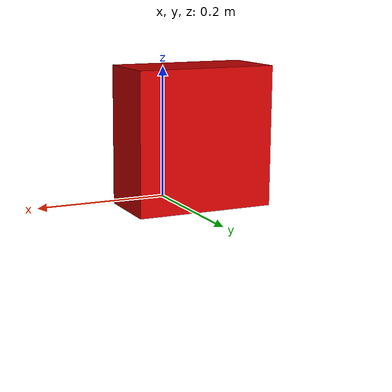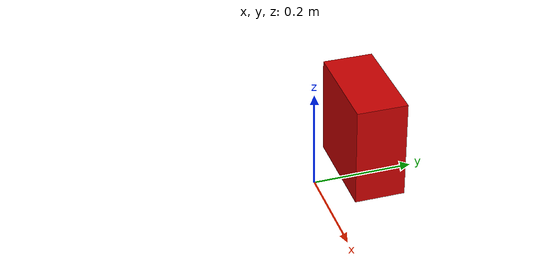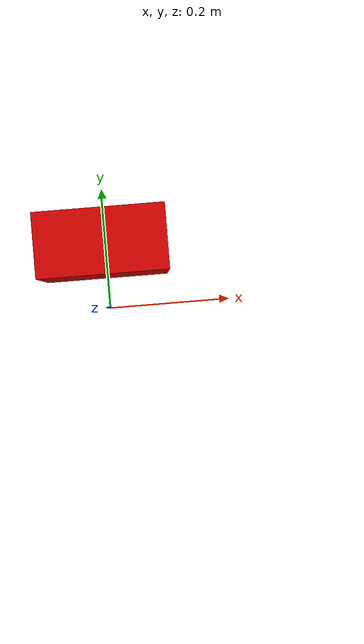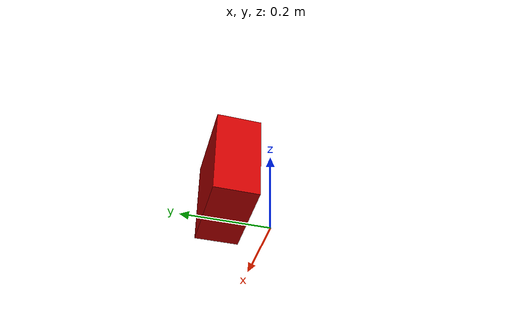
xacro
<?xml version="1.0"?>
<robot xmlns:xacro="http://www.ros.org/wiki/xacro" name="diff_drive_robot">

    <!--Include Files-->
    <xacro:include filename="$(find lab06_description)/urdf/ddr.parameters.xacro" />
    <xacro:include filename="$(find lab06_description)/urdf/ddr.materials.xacro" />
    <xacro:include filename="$(find lab06_description)/urdf/ddr.gazebo.xacro" />
    <xacro:include filename="$(find lab06_description)/urdf/ddr.macros.xacro" />

    <!--
        Build the robot!
    -->

    <!--Base Link-->
    <link name="base_link" />

    <!--Create the chassis and add it to the base link-->
    <xacro:gz_white_material name="${chassis_name}" />
    <link name="${chassis_name}">
        <visual>
            <xacro:chassis_geometry />
            <material name="white" />
        </visual>
        <collision>
            <xacro:chassis_geometry />
        </collision>
        <xacro:cylinder_inertial mass="${chassis_mass}"
                                 radius="${chassis_radius}"
                                 length="${chassis_height}"
                                 />
    </link>
    <joint name="robot_chassis_joint" type="fixed">
        <parent link="base_link"/>
        <child link="${chassis_name}"/>
        <origin xyz="0 0 ${wheel_radius * 1.33 + 0.01}"/>
    </joint>

    <!--Add Wheels-->
    <xacro:wheel name="right_wheel" rl_reflection="1" />
    <xacro:wheel name="left_wheel"  rl_reflection="-1" />

    <!--Add Gliders-->
    <xacro:glider name="front_glider" fb_reflection="1" />
    <xacro:glider name="back_glider" fb_reflection="-1" />

    <!--Add Camera-->
    <xacro:camera name="${camera_name}" />

</robot>

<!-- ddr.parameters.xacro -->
<robot xmlns:xacro="http://www.ros.org/wiki/xacro" name="diff_drive_robot">

    <!--
        Command line args
    -->
    <xacro:arg name="chassis_radius"    default="0" />
    <xacro:arg name="chassis_height"    default="0" />
    <xacro:arg name="wheel_radius"      default="0" />
    <xacro:arg name="glider_radius"     default="0" />

    <!--
        Properties
    -->
    <!--Robot vertical offset-->
    <xacro:property name="vertical_offset" value="${wheel_radius * 1.1}" />

    <!--Chassis properties-->
    <xacro:property name="chassis_name" value="ddr_chassis" />
    <xacro:property name="chassis_density" value="500.0" />
    <xacro:property name="chassis_radius" value="$(arg chassis_radius)" />
    <xacro:property name="chassis_height" value="$(arg chassis_height)" />
    <xacro:property name="chassis_mass" value="${chassis_density * pi * chassis_radius**2 * chassis_height}" />

    <!--Wheel properties-->
    <xacro:property name="wheel_density" value="800.0" />
    <xacro:property name="wheel_radius" value="$(arg wheel_radius)" />
    <xacro:property name="wheel_width" value="${$(arg wheel_radius) * .5}" />
    <xacro:property name="wheel_mass" value="${wheel_density * pi * wheel_radius**2 * wheel_width}" />

    <!--Glider properties-->
    <xacro:property name="glider_density" value="200.0" />
    <xacro:property name="glider_radius" value="$(arg glider_radius)" />
    <xacro:property name="glider_mass" value="${glider_density * (4.0 / 3.0) * pi * glider_radius**3}" />

    <!--Camera properties-->
    <xacro:property name="camera_name" value="rgba_camera" />
    <xacro:property name="camera_density" value="100.0" />
    <xacro:property name="camera_length" value="0.1" />
    <xacro:property name="camera_width" value="0.2" />
    <xacro:property name="camera_height" value="0.2" />
    <xacro:property name="camera_mass" value="${camera_density * camera_length * camera_width * camera_height}" />

    <!--Differential Drive properties-->

</robot>

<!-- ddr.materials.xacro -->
<robot xmlns:xacro="http://www.ros.org/wiki/xacro" name="diff_drive_robot">

  <material name="black">
        <color rgba="0 0 0 1"/>
    </material>

    <material name="blue">
        <color rgba="0.0 0.0 0.8 1.0" />
    </material>

    <material name="green">
        <color rgba="0.0 0.8 0.0 1.0" />
    </material>

    <material name="grey">
        <color rgba="0.2 0.2 0.2 1.0" />
    </material>

    <material name="orange">
        <color rgba="${255/255} ${108/255} ${10/255} 1.0" />
    </material>

    <material name="brown">
        <color rgba="${222/255} ${207/255} ${195/255} 1.0" />
    </material>

    <material name="red">
        <color rgba="0.8 0.0 0.0 1.0" />
    </material>

    <material name="white">
        <color rgba="1.0 1.0 1.0 1.0" />
    </material>

</robot>

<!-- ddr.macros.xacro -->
<robot xmlns:xacro="http://www.ros.org/wiki/xacro" name="diff_drive_robot">

    <!--
        Macro for creating cylinder inertial
    -->
    <xacro:macro name="cylinder_inertial" params="mass radius length">
        <inertial>
            <mass value="${mass}" />
            <inertia
                ixx="${(1.0 / 12.0) * (3.0 * radius**2 + length**2) * mass}"
                iyy="${(1.0 / 12.0) * (3.0 * radius**2 + length**2) * mass}"
                izz="${(1.0 / 12.0) * radius**2 * mass}"
                ixy="0"
                ixz="0"
                iyz="0"
                />
        </inertial>
    </xacro:macro>

    <!--
        Macro for creating sphere inertial
    -->
    <xacro:macro name="sphere_inertial" params="mass radius">
        <inertial>
            <mass value="${mass}" />
            <inertia
                ixx="${(2.0 / 5.0) * radius**2 * mass}"
                iyy="${(2.0 / 5.0) * radius**2 * mass}"
                izz="${(2.0 / 5.0) * radius**2 * mass}"
                ixy="0"
                ixz="0"
                iyz="0"
                />
        </inertial>
    </xacro:macro>

    <!--
        Macro for creating cube inertial
    -->
    <xacro:macro name="cube_inertial" params="mass x y z">
        <inertial>
            <mass value="${mass}" />
            <inertia
                ixx="${(1.0 / 12.0) * (y**2 + z**2) * mass}"
                iyy="${(1.0 / 12.0) * (x**2 + z**2) * mass}"
                izz="${(1.0 / 12.0) * (y**2 + x**2) * mass}"
                ixy="0"
                ixz="0"
                iyz="0"
                />
        </inertial>
    </xacro:macro>

    <!--Chassis Macros-->
    <xacro:macro name="chassis_geometry">
        <geometry>
            <cylinder length="${chassis_height}" radius="${chassis_radius}" />
        </geometry>
    </xacro:macro>

    <!--Wheel Macro-->
    <xacro:macro name="wheel" params="name rl_reflection">
        <xacro:gz_black_material name="${name}" />
        <link name="${name}">
            <visual>
                <origin xyz="0 0 0" rpy="0 1.571 0" />
                <geometry>
                    <cylinder length="${wheel_width}" radius="${wheel_radius}" />
                </geometry>
                <material name="black"/>
            </visual>
            <collision>
                <geometry>
                    <sphere radius="${wheel_radius}" />
                </geometry>
            </collision>
            <xacro:cylinder_inertial mass="${wheel_mass}"
                                     radius="${wheel_radius}"
                                     length="${wheel_width}"
                                     />
        </link>
        <joint name="${name}_joint" type="continuous">
            <parent link="${chassis_name}"/>
            <child link="${name}"/>
            <origin xyz="${rl_reflection * chassis_radius * 0.75} 0 ${wheel_radius * -0.0}"/>
            <axis xyz="1 0 0"/>
        </joint>
    </xacro:macro>

    <!--Glider Macro-->
    <xacro:macro name="glider" params="name fb_reflection">
        <xacro:gz_black_material name="${name}" />
        <link name="${name}">
            <visual>
                <geometry>
                    <sphere radius="${glider_radius}" />
                </geometry>
                <material name="black"/>
            </visual>
            <collision>
                <geometry>
                    <sphere radius="${glider_radius}" />
                </geometry>
            </collision>
            <xacro:sphere_inertial mass="${glider_mass}"
                                   radius="${glider_radius}"
                                   />
        </link>
        <joint name="${name}_joint" type="fixed">
            <parent link="${chassis_name}"/>
            <child link="${name}"/>
            <origin xyz="0 ${fb_reflection * 0.5} -0.09"/>
        </joint>
    </xacro:macro>

    <!--Camera Macro-->
    <xacro:macro name="camera" params="name">
        <xacro:gz_red_material name="${name}" />
        <link name="${name}">
            <visual>
                <geometry>
                    <box size="${camera_length} ${camera_width} ${camera_height}" />
                </geometry>
                <material name="red"/>
            </visual>
            <collision>
                <geometry>
                    <box size="${camera_length} ${camera_width} ${camera_height}" />
                </geometry>
            </collision>
            <xacro:cube_inertial mass="${camera_mass}"
                                 x="${camera_width}"
                                 y="${camera_length}"
                                 z="${camera_height}"
                                 />
        </link>
        <joint name="${name}_joint" type="fixed">
            <parent link="${chassis_name}"/>
            <child link="${name}"/>
            <origin xyz="0 ${-(chassis_radius - camera_length)} ${(chassis_height / 2.0) + (camera_height / 2.0)}" rpy="0 0 -1.571"/>
        </joint>
    </xacro:macro>

</robot>
